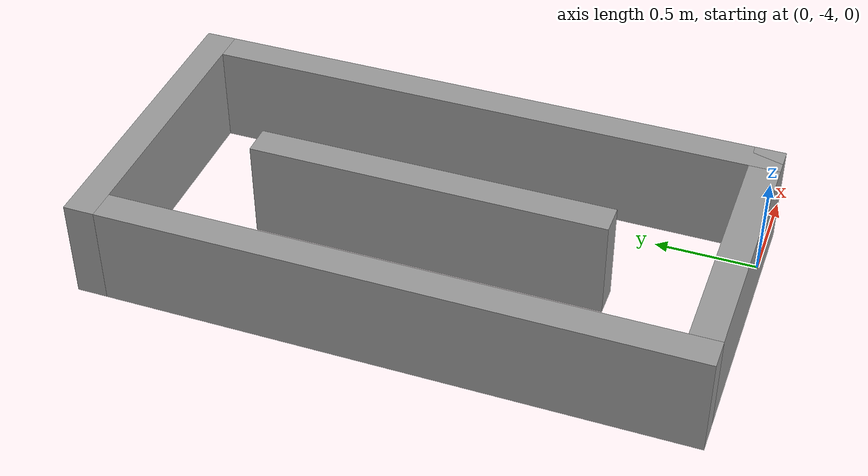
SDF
<?xml version='1.0'?>
<sdf version='1.6'>
  <model name='Long_Rectangle'>
    <pose frame=''>-0.485 -2.525 0 0 -0 0</pose>
    <link name='Wall_3'>
      <collision name='Wall_3_Collision'>
        <geometry>
          <box>
            <size>3 0.15 0.5</size>
          </box>
        </geometry>
        <pose frame=''>0 0 0.25 0 -0 0</pose>
      </collision>
      <visual name='Wall_3_Visual'>
        <pose frame=''>0 0 0.25 0 -0 0</pose>
        <geometry>
          <box>
            <size>3 0.15 0.5</size>
          </box>
        </geometry>
        <material>
          <script>
            <uri>file://media/materials/scripts/gazebo.material</uri>
            <name>Gazebo/Grey</name>
          </script>
          <ambient>0.298039 0.298039 0.298039 1</ambient>
        </material>
        <meta>
          <layer>0</layer>
        </meta>
      </visual>
      <pose frame=''>-0.675 0 0 0 0 -1.5708</pose>
    </link>
    <link name='Wall_5'>
      <collision name='Wall_5_Collision'>
        <geometry>
          <box>
            <size>1.5 0.15 0.5</size>
          </box>
        </geometry>
        <pose frame=''>0 0 0.25 0 -0 0</pose>
      </collision>
      <visual name='Wall_5_Visual'>
        <pose frame=''>0 0 0.25 0 -0 0</pose>
        <geometry>
          <box>
            <size>1.5 0.15 0.5</size>
          </box>
        </geometry>
        <material>
          <script>
            <uri>file://media/materials/scripts/gazebo.material</uri>
            <name>Gazebo/Grey</name>
          </script>
          <ambient>0.298039 0.298039 0.298039 1</ambient>
        </material>
        <meta>
          <layer>0</layer>
        </meta>
      </visual>
      <pose frame=''>0 1.425 0 0 -0 0</pose>
    </link>
    <link name='Wall_6'>
      <collision name='Wall_6_Collision'>
        <geometry>
          <box>
            <size>3 0.15 0.5</size>
          </box>
        </geometry>
        <pose frame=''>0 0 0.25 0 -0 0</pose>
      </collision>
      <visual name='Wall_6_Visual'>
        <pose frame=''>0 0 0.25 0 -0 0</pose>
        <geometry>
          <box>
            <size>3 0.15 0.5</size>
          </box>
        </geometry>
        <material>
          <script>
            <uri>file://media/materials/scripts/gazebo.material</uri>
            <name>Gazebo/Grey</name>
          </script>
          <ambient>0.298039 0.298039 0.298039 1</ambient>
        </material>
        <meta>
          <layer>0</layer>
        </meta>
      </visual>
      <pose frame=''>0.675 0 0 0 0 -1.5708</pose>
    </link>
    <link name='Wall_7'>
      <collision name='Wall_7_Collision'>
        <geometry>
          <box>
            <size>1.5 0.15 0.5</size>
          </box>
        </geometry>
        <pose frame=''>0 0 0.25 0 -0 0</pose>
      </collision>
      <visual name='Wall_7_Visual'>
        <pose frame=''>0 0 0.25 0 -0 0</pose>
        <geometry>
          <box>
            <size>1.5 0.15 0.5</size>
          </box>
        </geometry>
        <material>
          <script>
            <uri>file://media/materials/scripts/gazebo.material</uri>
            <name>Gazebo/Grey</name>
          </script>
          <ambient>0.298039 0.298039 0.298039 1</ambient>
        </material>
        <meta>
          <layer>0</layer>
        </meta>
      </visual>
      <pose frame=''>0 -1.425 0 0 -0 3.14159</pose>
    </link>
    <link name='Wall_9'>
      <collision name='Wall_9_Collision'>
        <geometry>
          <box>
            <size>1.75 0.15 0.5</size>
          </box>
        </geometry>
        <pose frame=''>0 0 0.25 0 -0 0</pose>
      </collision>
      <visual name='Wall_9_Visual'>
        <pose frame=''>0 0 0.25 0 -0 0</pose>
        <geometry>
          <box>
            <size>1.75 0.15 0.5</size>
          </box>
        </geometry>
        <material>
          <script>
            <uri>file://media/materials/scripts/gazebo.material</uri>
            <name>Gazebo/Grey</name>
          </script>
          <ambient>0.298039 0.298039 0.298039 1</ambient>
        </material>
        <meta>
          <layer>0</layer>
        </meta>
      </visual>
      <pose frame=''>0.005 0.015 0 0 0 -1.5708</pose>
    </link>
    <static>1</static>
  </model>
</sdf>
